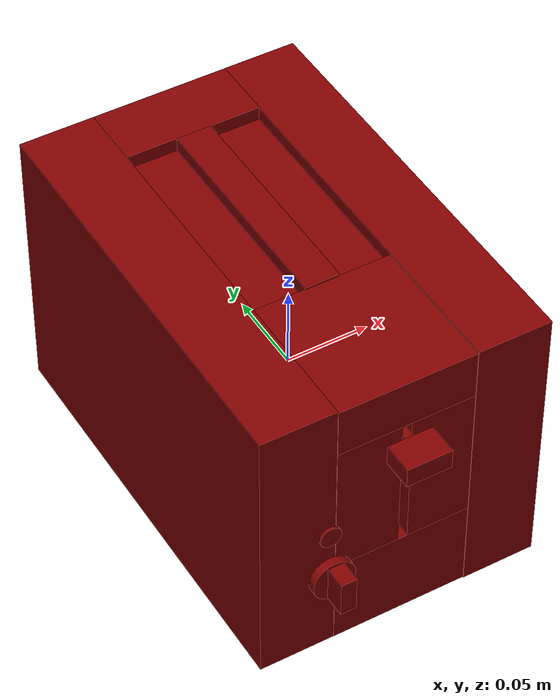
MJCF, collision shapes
<?xml version='1.0' encoding='UTF-8'?>
<mujoco model="model">
  <compiler angle="radian"/>
  <asset>
    <mesh file="visuals/Body001.obj" name="Body001_vis"/>
    <mesh file="visuals/Button001.obj" name="Button001_vis"/>
    <mesh file="visuals/Knob001.obj" name="Knob001_vis"/>
    <mesh file="visuals/Lever001.obj" name="Lever001_vis"/>
    <texture file="visuals/T_BC001.png" name="Body001_material" type="2d"/>
    <material name="Body001_material" rgba="1 1 1 1.0" texture="Body001_material" shininess="0.5" specular="0.5"/>
    <texture file="visuals/T_BC001.png" name="Button001_material" type="2d"/>
    <material name="Button001_material" rgba="1 1 1 1.0" texture="Button001_material" shininess="0.5" specular="0.5"/>
    <texture file="visuals/T_BC001.png" name="Knob001_material" type="2d"/>
    <material name="Knob001_material" rgba="1 1 1 1.0" texture="Knob001_material" shininess="0.5" specular="0.5"/>
    <texture file="visuals/T_BC001.png" name="Lever001_material" type="2d"/>
    <material name="Lever001_material" rgba="1 1 1 1.0" texture="Lever001_material" shininess="0.5" specular="0.5"/>
  </asset>
  <default>
    <default class="visual">
      <geom conaffinity="0" contype="0" group="1" type="mesh"/>
    </default>
    <default class="collision">
      <geom group="0" rgba="0.5 0 0 0.5"/>
    </default>
    <default class="spawn">
      <geom group="0" rgba="1 1 1 0.5" contype="0" conaffinity="0"/>
      <site group="0" rgba="1 1 1 0.5"/>
    </default>
    <default class="region">
      <geom group="1" conaffinity="0" contype="0" rgba="0 1 0 0"/>
    </default>
  </default>
  <worldbody>
    <body>
      <body name="object">
        <geom mesh="Body001_vis" type="mesh" solimp="0.998 0.998 0.001" solref="0.001 1" density="100" friction="0.95 0.3 0.1" class="visual" material="Body001_material"/>
        <geom class="collision" type="box" pos="-0.06400539726018906 0.011548389680683613 0.0003862087905872613" size="0.022658096626400948 0.1300077885389328 0.08722088485956192" quat="1.0 0.0 0.0 0.0"/>
        <geom class="collision" type="box" pos="0.0638289675116539 0.011217625811696053 0.0003862087905872613" size="0.022320302203297615 0.13033854961395264 0.08722088485956192" quat="1.0 0.0 0.0 0.0"/>
        <geom class="collision" type="box" pos="0.00017587095499038696 0.03397093713283539 0.02879152074456215" size="0.010625428520143032 0.06839926540851593 0.058960530906915665" quat="1.0 0.0 0.0 0.0"/>
        <geom class="collision" type="box" pos="0.00035841501085087657 0.1218574047088623 0.0005311719141900539" size="0.04163024574518204 0.01949259079992771 0.08722088485956192" quat="1.0 0.0 0.0 0.0"/>
        <geom class="collision" type="box" pos="0.00035841501085087657 -0.008424283936619759 -0.05840917304158211" size="0.04163024574518204 0.11023993790149689 0.02828053943812847" quat="1.0 0.0 0.0 0.0"/>
        <geom class="collision" type="box" pos="0.00035841501085087657 -0.07627751678228378 0.07131405174732208" size="0.04163024574518204 0.04238671809434891 0.01524488814175129" quat="1.0 0.0 0.0 0.0"/>
        <geom class="collision" type="box" pos="-0.021906234323978424 -0.07627751678228378 0.01312453206628561" size="0.019365597516298294 0.04238671809434891 0.04282679036259651" quat="1.0 0.0 0.0 0.0"/>
        <geom class="collision" type="box" pos="0.022510794922709465 -0.07627751678228378 0.01312453206628561" size="0.019365597516298294 0.04238671809434891 0.04282679036259651" quat="1.0 0.0 0.0 0.0"/>
        <body name="Button001">
          <joint axis="0.0 1.0 0.0" pos="-0.04502039775252342 -0.11916005611419678 -0.0031388550996780396" limited="true" name="Button001_joint" range="0.0 0.001" type="slide" damping="1" frictionloss="1" armature=".01" stiffness="0.05"/>
          <geom mesh="Button001_vis" type="mesh" solimp="0.998 0.998 0.001" solref="0.001 1" density="100" friction="0.95 0.3 0.1" class="visual" material="Button001_material"/>
          <geom class="collision" type="cylinder" pos="-0.04498175531625748 -0.11939021944999695 -0.003092725994065404" size="0.00656898831948638 0.0008177278796210885" quat="0.7071067094802856 0.7071068286895752 0.0 0.0"/>
        </body>
        <body name="Knob001">
          <joint axis="0.0 1.0 0.0" pos="-0.04491473361849785 -0.12483047693967819 -0.03261572867631912" limited="true" name="Knob001_joint" range="0.0 5.410520681182422" type="hinge" damping="0.05" armature="0.001" springref="-0.01"/>
          <geom mesh="Knob001_vis" type="mesh" solimp="0.998 0.998 0.001" solref="0.001 1" density="100" friction="0.95 0.3 0.1" class="visual" material="Knob001_material"/>
          <geom class="collision" type="cylinder" pos="-0.044928088784217834 -0.12200231105089188 -0.03262140974402428" size="0.012946147471666336 0.0024343591649085283" quat="0.7071067094802856 0.7071068286895752 0.0 0.0"/>
          <geom class="collision" type="box" pos="-0.04446423053741455 -0.13090379536151886 -0.03278791159391403" size="0.00479382649064064 0.006836991757154465 0.011281080543994904" quat="1.0 0.0 0.0 0.0"/>
        </body>
        <body name="Lever001">
          <joint axis="0.0 0.0 -1.0" pos="1.8379651010036469e-06 -0.126191645860672 0.04481583461165428" limited="true" name="Lever001_joint" range="0.0 0.063" type="slide" damping="1" frictionloss="1" armature=".01" stiffness="1" springref="-1"/>
          <geom mesh="Lever001_vis" type="mesh" solimp="0.998 0.998 0.001" solref="0.001 1" density="100" friction="0.95 0.3 0.1" class="visual" material="Lever001_material"/>
          <geom class="collision" type="box" pos="-0.00020210449292790145 -0.13170504570007324 0.0448116734623909" size="0.013609621673822403 0.009558736346662045 0.006129815708845854" quat="1.0 0.0 0.0 0.0" name="lever_knob"/>
          <geom class="collision" type="box" pos="0.00010211656626779586 -0.11698221415281296 0.04483615607023239" size="0.0024376832880079746 0.004996731411665678 0.004550102632492781" quat="1.0 0.0 0.0 0.0"/>
          <geom class="collision" type="box" pos="-0.02565935254096985 0.03408454731106758 0.07921023666858673" size="0.014040092006325722 0.06624063849449158 0.0021410591434687376" quat="1.0 0.0 0.0 0.0" name="slotL_floor"/>
          <geom class="collision" type="box" pos="0.026169415563344955 0.03408454731106758 0.07921023666858673" size="0.014040092006325722 0.06624063849449158 0.0021410591434687376" quat="1.0 0.0 0.0 0.0" name="slotR_floor"/>
        </body>
        <geom class="region" name="reg_main" type="box" pos="-1.862645149230957e-09 0.011367946863174438 0.0" size="0.08569683134555817 0.12980511784553528 0.0864655077457428"/>
      </body>
    </body>
  </worldbody>
  <actuator>
    <motor name="Button001_joint_actuator" joint="Button001_joint" gear="0.5"/>
    <motor name="Knob001_joint_actuator" joint="Knob001_joint" gear="0.5"/>
    <motor name="Lever001_joint_actuator" joint="Lever001_joint" gear="0.5"/>
  </actuator>
</mujoco>
